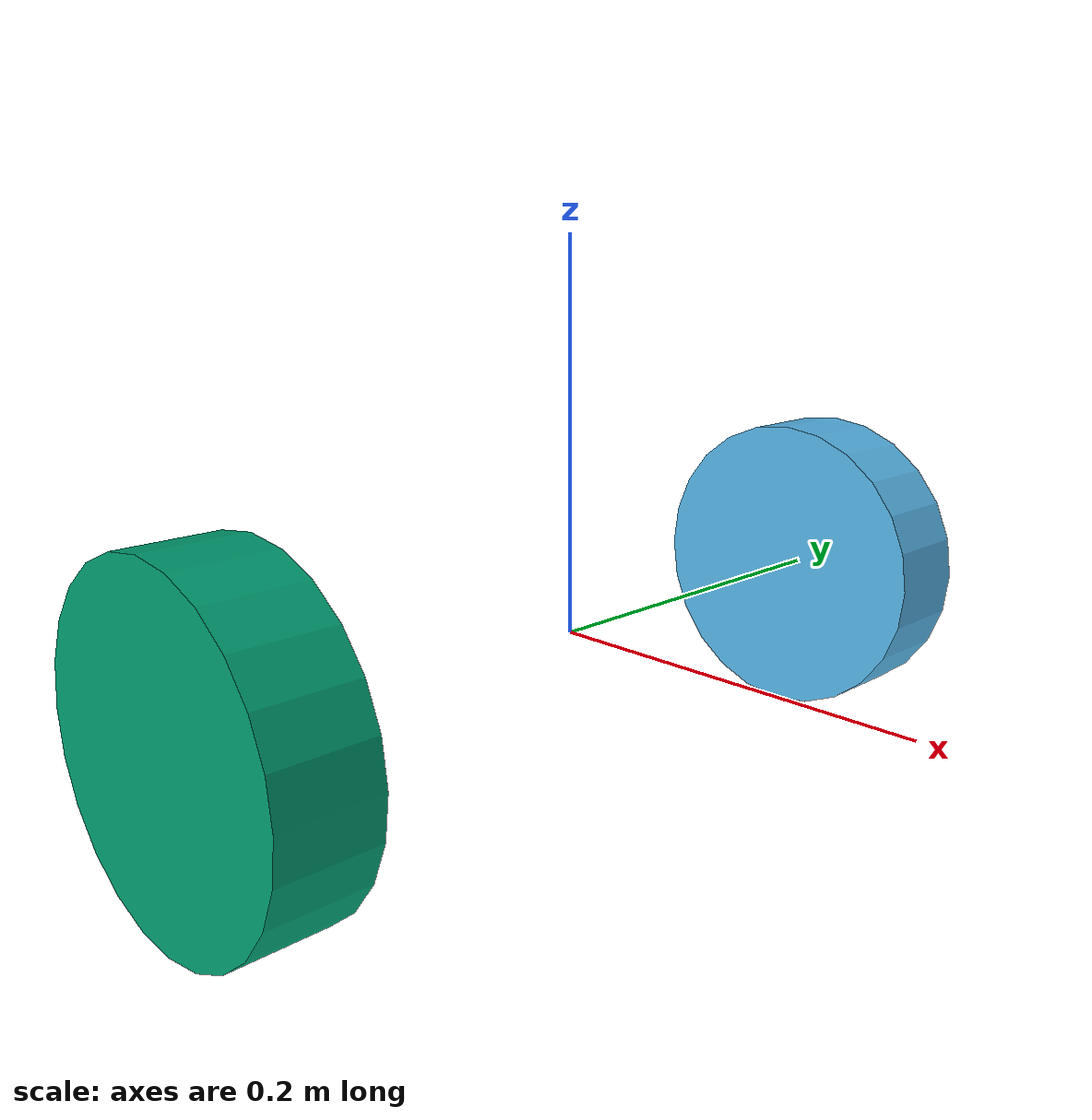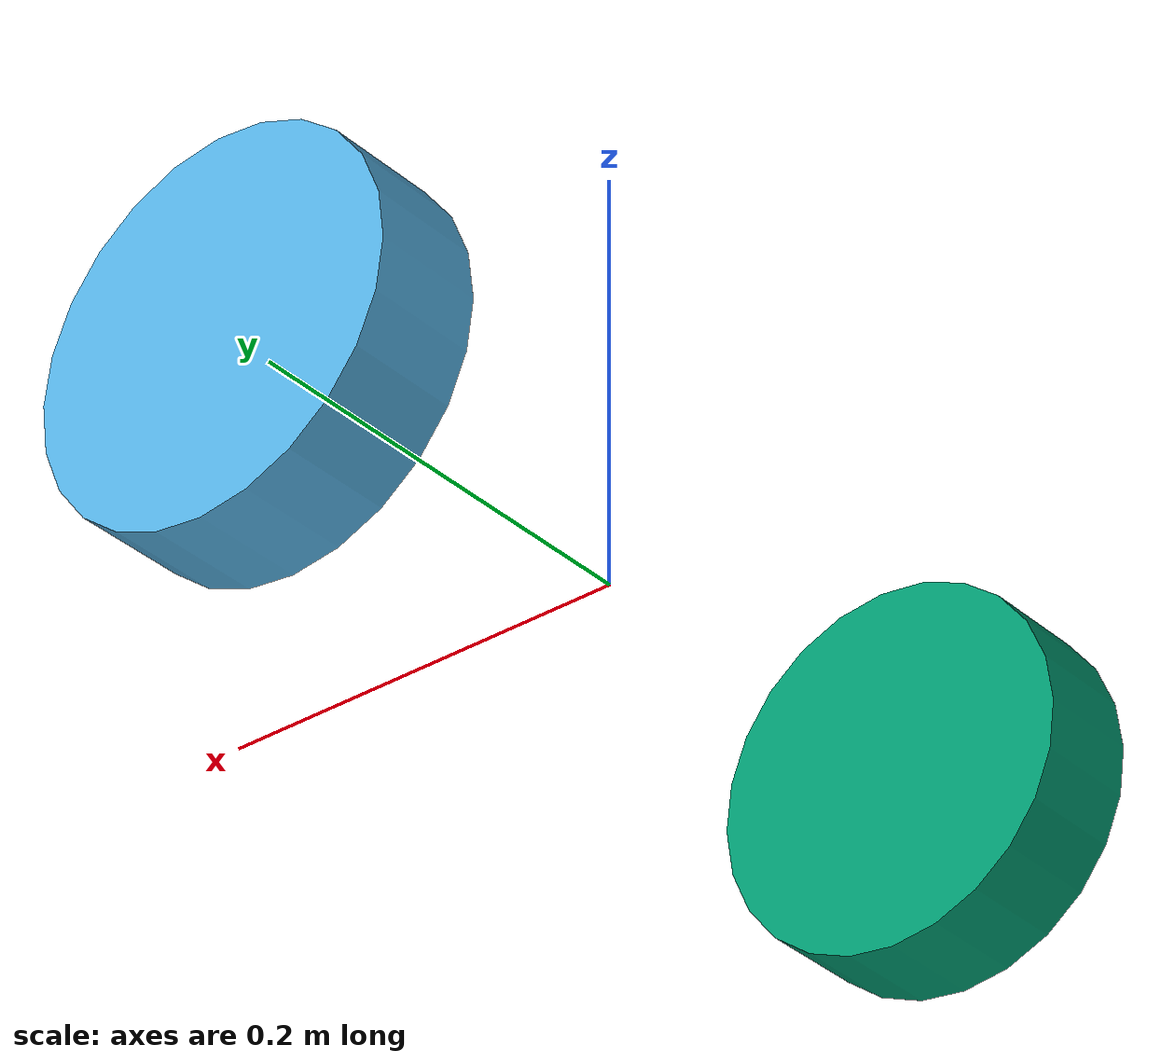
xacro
<?xml version="1.0"?>
<!-- Base differentielle du robot d'accueil : 2 BotWheels ODrive, entraxe 0.415 m. -->
<robot xmlns:xacro="http://www.ros.org/wiki/xacro" name="rob_accueil">

  <xacro:arg name="prefix" default="" />
  <xacro:arg name="use_mock_hardware" default="false" />

  <!-- Property tiree de l'arg : ${prefix} n'accepte pas directement un arg. -->
  <xacro:property name="prefix" value="$(arg prefix)" />

  <!-- Geometrie mesuree du robot. -->
  <xacro:property name="wheel_separation" value="0.415" />  <!-- entraxe roue gauche/droite (m) -->
  <xacro:property name="wheel_radius" value="0.0855" />     <!-- rayon BotWheel ODrive (m) -->
  <xacro:property name="wheel_width" value="0.050" />       <!-- largeur roue, cosmetique (m) -->
  <xacro:property name="PI" value="3.1415926535897931" />

  <!-- base_link : milieu de l'essieu, a la hauteur de l'axe des roues. -->
  <link name="${prefix}base_link"/>

  <!-- Roue gauche : cote +y (convention ROS), ODrive node_id 0. -->
  <joint name="${prefix}left_wheel_joint" type="continuous">
    <parent link="${prefix}base_link"/>
    <child link="${prefix}left_wheel"/>
    <origin xyz="0 ${wheel_separation/2} 0" rpy="0 0 0"/>
    <axis xyz="0 1 0"/>
  </joint>
  <link name="${prefix}left_wheel">
    <visual>
      <origin xyz="0 0 0" rpy="${PI/2} 0 0"/>
      <geometry>
        <cylinder length="${wheel_width}" radius="${wheel_radius}"/>
      </geometry>
    </visual>
  </link>

  <!-- Roue droite : cote -y, ODrive node_id 1. -->
  <joint name="${prefix}right_wheel_joint" type="continuous">
    <parent link="${prefix}base_link"/>
    <child link="${prefix}right_wheel"/>
    <origin xyz="0 -${wheel_separation/2} 0" rpy="0 0 0"/>
    <axis xyz="0 1 0"/>
  </joint>
  <link name="${prefix}right_wheel">
    <visual>
      <origin xyz="0 0 0" rpy="${PI/2} 0 0"/>
      <geometry>
        <cylinder length="${wheel_width}" radius="${wheel_radius}"/>
      </geometry>
    </visual>
  </link>

  <!-- Interface ros2_control : plugin ODrive, can1, node_id 0 gauche / 1 droite. -->
  <xacro:include filename="$(find odrive_rob_accueil)/urdf/rob_accueil.ros2_control.xacro" />
  <xacro:rob_accueil_ros2_control
    name="RobAccueil" prefix="$(arg prefix)" use_mock_hardware="$(arg use_mock_hardware)"/>

</robot>
